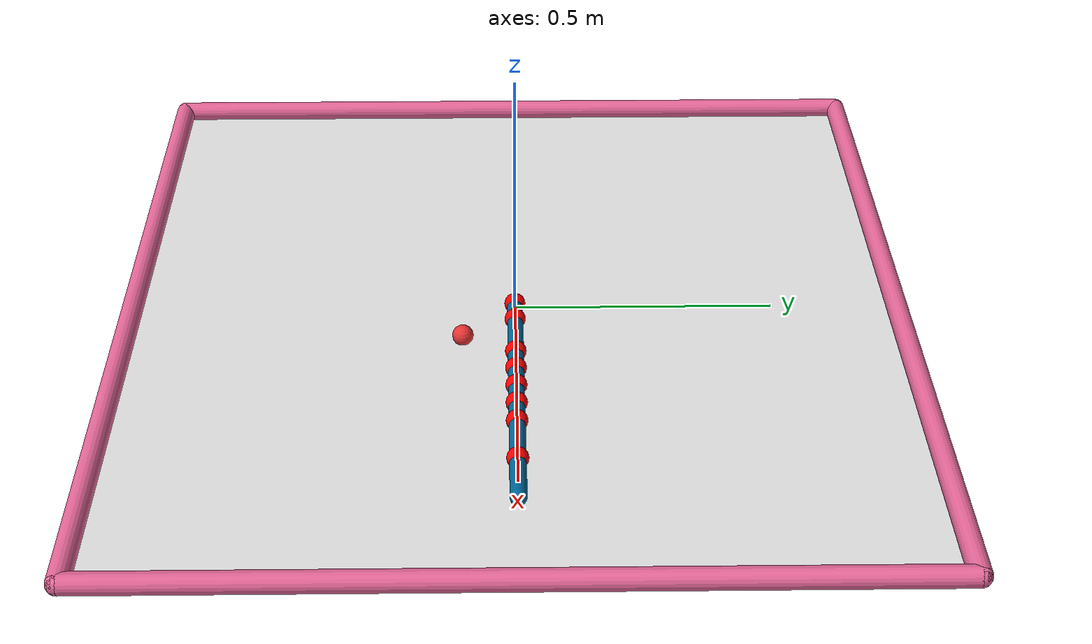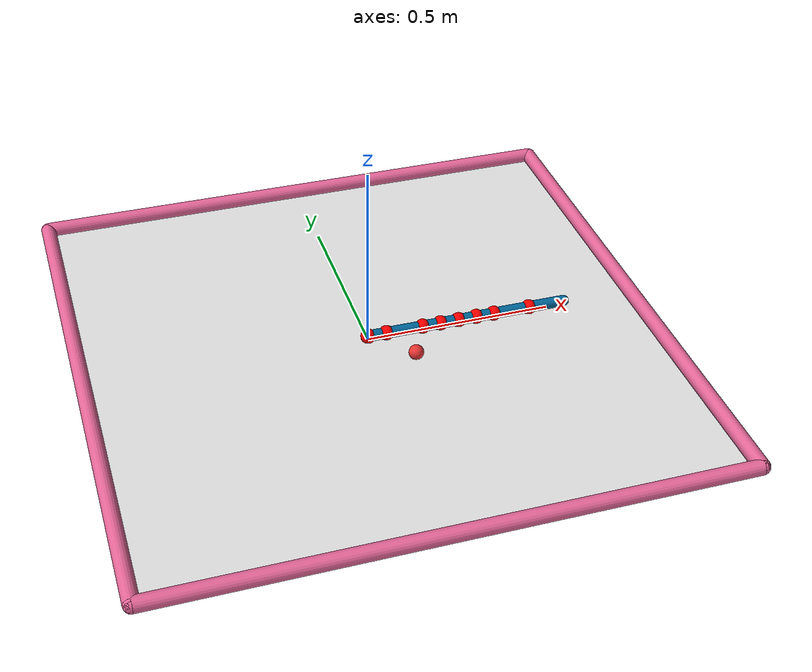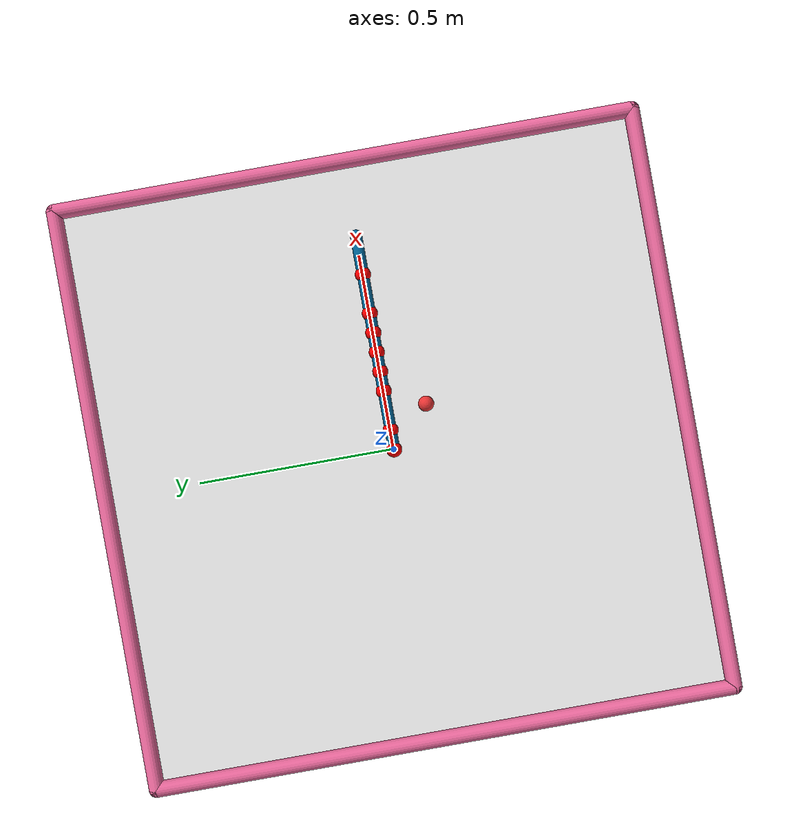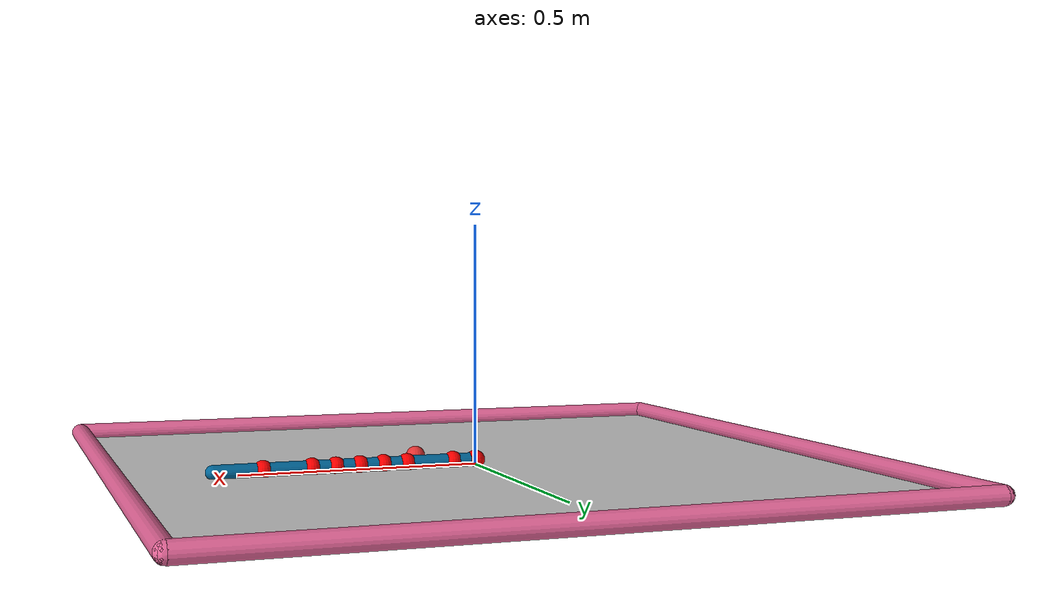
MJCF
<mujoco model="reacher_8j_0.05_0.10_0.05_0.05_0.05_0.05_0.10_0.10">
  <compiler angle="radian" inertiafromgeom="true"/>
  <default>
    <joint armature="1" damping="1" limited="true"/>
    <geom contype="1" conaffinity="1" friction="1 0.1 0.1" rgba="0.7 0.7 0 1" density="1000"/>
  </default>
  <option gravity="0 0 -9.81" integrator="RK4" timestep="0.005"/>
  <worldbody>
    <geom conaffinity="0" contype="0" name="ground" pos="0 0 0" rgba="0.9 0.9 0.9 1" size="0.7424999999999999 0.7424999999999999 10" type="plane"/>
    <geom conaffinity="0" contype="0" name="sideS" rgba="0.9 0.4 0.6 1" size="0.02" type="capsule" fromto="-0.7424999999999999 -0.7424999999999999 .01 0.7424999999999999 -0.7424999999999999 .01"/>
    <geom conaffinity="0" contype="0" name="sideE" rgba="0.9 0.4 0.6 1" size="0.02" type="capsule" fromto="0.7424999999999999 -0.7424999999999999 .01 0.7424999999999999 0.7424999999999999 .01"/>
    <geom conaffinity="0" contype="0" name="sideN" rgba="0.9 0.4 0.6 1" size="0.02" type="capsule" fromto="-0.7424999999999999 0.7424999999999999 .01 0.7424999999999999 0.7424999999999999 .01"/>
    <geom conaffinity="0" contype="0" name="sideW" rgba="0.9 0.4 0.6 1" size="0.02" type="capsule" fromto="-0.7424999999999999 -0.7424999999999999 .01 -0.7424999999999999 0.7424999999999999 .01"/>
    <geom conaffinity="0" contype="0" name="root" rgba="0.9 0.4 0.6 1" size=".011" type="cylinder" fromto="0 0 0 0 0 0.02"/>
    <body name="body0" pos="0 0 0.01">
      <geom name="link0" type="capsule" size="0.015" rgba="0.0 0.4 0.6 1" fromto="0 0 0 0.05 0 0" margin="0.005"/>
      <joint name="joint0" type="hinge" pos="0 0 0" axis="0 0 1" limited="false"/>
      <geom name="joint_guard_0" type="sphere" size="0.02" rgba="1 0 0 1" pos="0 0 0" contype="1" conaffinity="1" margin="0.002"/>
      <body name="body1" pos="0.05 0 0">
      <geom name="link1" type="capsule" size="0.015" rgba="0.0 0.4 0.6 1" fromto="0 0 0 0.1 0 0" margin="0.005"/>
      <joint name="joint1" type="hinge" pos="0 0 0" axis="0 0 1" limited="true" range="-2.2 2.2"/>
      <geom name="joint_guard_1" type="sphere" size="0.02" rgba="1 0 0 1" pos="0 0 0" contype="1" conaffinity="1" margin="0.002"/>
      <body name="body2" pos="0.1 0 0">
      <geom name="link2" type="capsule" size="0.015" rgba="0.0 0.4 0.6 1" fromto="0 0 0 0.05 0 0" margin="0.005"/>
      <joint name="joint2" type="hinge" pos="0 0 0" axis="0 0 1" limited="true" range="-2.2 2.2"/>
      <geom name="joint_guard_2" type="sphere" size="0.02" rgba="1 0 0 1" pos="0 0 0" contype="1" conaffinity="1" margin="0.002"/>
      <body name="body3" pos="0.05 0 0">
      <geom name="link3" type="capsule" size="0.015" rgba="0.0 0.4 0.6 1" fromto="0 0 0 0.05 0 0" margin="0.005"/>
      <joint name="joint3" type="hinge" pos="0 0 0" axis="0 0 1" limited="true" range="-2.2 2.2"/>
      <geom name="joint_guard_3" type="sphere" size="0.02" rgba="1 0 0 1" pos="0 0 0" contype="1" conaffinity="1" margin="0.002"/>
      <body name="body4" pos="0.05 0 0">
      <geom name="link4" type="capsule" size="0.015" rgba="0.0 0.4 0.6 1" fromto="0 0 0 0.05 0 0" margin="0.005"/>
      <joint name="joint4" type="hinge" pos="0 0 0" axis="0 0 1" limited="true" range="-2.2 2.2"/>
      <geom name="joint_guard_4" type="sphere" size="0.02" rgba="1 0 0 1" pos="0 0 0" contype="1" conaffinity="1" margin="0.002"/>
      <body name="body5" pos="0.05 0 0">
      <geom name="link5" type="capsule" size="0.015" rgba="0.0 0.4 0.6 1" fromto="0 0 0 0.05 0 0" margin="0.005"/>
      <joint name="joint5" type="hinge" pos="0 0 0" axis="0 0 1" limited="true" range="-2.2 2.2"/>
      <geom name="joint_guard_5" type="sphere" size="0.02" rgba="1 0 0 1" pos="0 0 0" contype="1" conaffinity="1" margin="0.002"/>
      <body name="body6" pos="0.05 0 0">
      <geom name="link6" type="capsule" size="0.015" rgba="0.0 0.4 0.6 1" fromto="0 0 0 0.1 0 0" margin="0.005"/>
      <joint name="joint6" type="hinge" pos="0 0 0" axis="0 0 1" limited="true" range="-2.2 2.2"/>
      <geom name="joint_guard_6" type="sphere" size="0.02" rgba="1 0 0 1" pos="0 0 0" contype="1" conaffinity="1" margin="0.002"/>
      <body name="body7" pos="0.1 0 0">
      <geom name="link7" type="capsule" size="0.015" rgba="0.0 0.4 0.6 1" fromto="0 0 0 0.1 0 0" margin="0.005"/>
      <joint name="joint7" type="hinge" pos="0 0 0" axis="0 0 1" limited="true" range="-2.2 2.2"/>
      <geom name="joint_guard_7" type="sphere" size="0.02" rgba="1 0 0 1" pos="0 0 0" contype="1" conaffinity="1" margin="0.002"/>
      <body name="fingertip" pos="0.1 0 0">
        <geom name="fingertip_col" type="sphere" size="0.02" rgba="0 0 0 0" pos="0 0 0" contype="1" conaffinity="1" margin="0.002"/>
        <geom name="fingertip_vis" type="sphere" size="0.01" rgba="0.0 0.8 0.6 1" pos="0 0 0" contype="0" conaffinity="0"/>
      </body>
    </body>
    </body>
    </body>
    </body>
    </body>
    </body>
    </body>
    </body>
    <body name="target" pos="0.1 -0.1 0.01">
      <joint name="target_x" type="slide" axis="1 0 0" limited="true" range="-0.49499999999999994 0.49499999999999994" ref="0.1" damping="0" armature="0" stiffness="0"/>
      <joint name="target_y" type="slide" axis="0 1 0" limited="true" range="-0.49499999999999994 0.49499999999999994" ref="-0.1" damping="0" armature="0" stiffness="0"/>
      <geom name="target" type="sphere" size="0.02" rgba="0.9 0.2 0.2 1" pos="0 0 0" contype="0" conaffinity="0"/>
    </body>
  </worldbody>
  <actuator>
    <motor joint="joint0" ctrllimited="true" ctrlrange="-1.0 1.0" gear="40.0"/>
    <motor joint="joint1" ctrllimited="true" ctrlrange="-1.0 1.0" gear="40.0"/>
    <motor joint="joint2" ctrllimited="true" ctrlrange="-1.0 1.0" gear="40.0"/>
    <motor joint="joint3" ctrllimited="true" ctrlrange="-1.0 1.0" gear="40.0"/>
    <motor joint="joint4" ctrllimited="true" ctrlrange="-1.0 1.0" gear="40.0"/>
    <motor joint="joint5" ctrllimited="true" ctrlrange="-1.0 1.0" gear="40.0"/>
    <motor joint="joint6" ctrllimited="true" ctrlrange="-1.0 1.0" gear="40.0"/>
    <motor joint="joint7" ctrllimited="true" ctrlrange="-1.0 1.0" gear="40.0"/>
  </actuator>
</mujoco>
